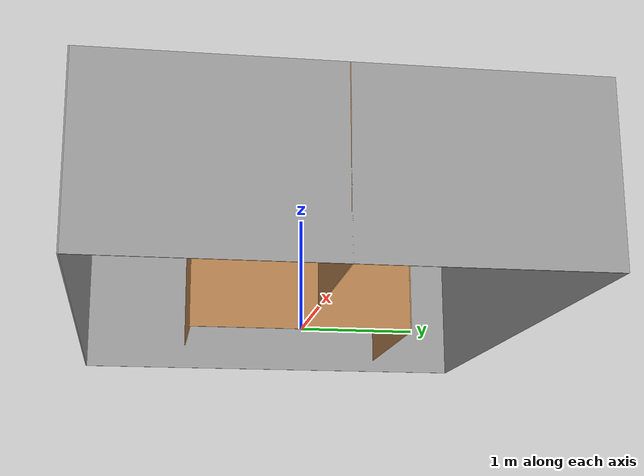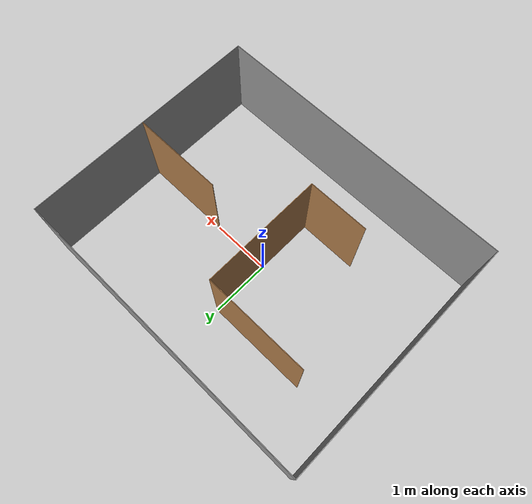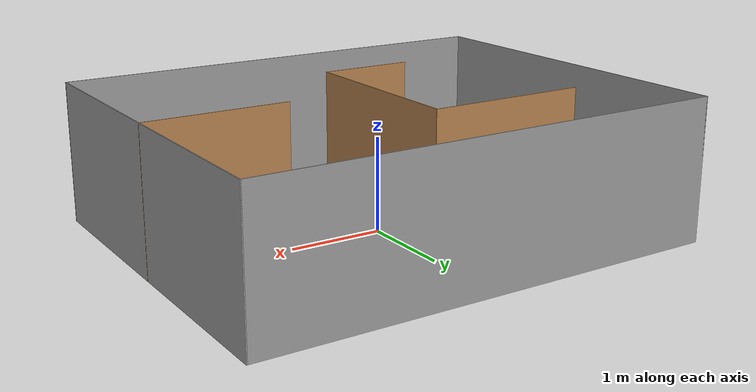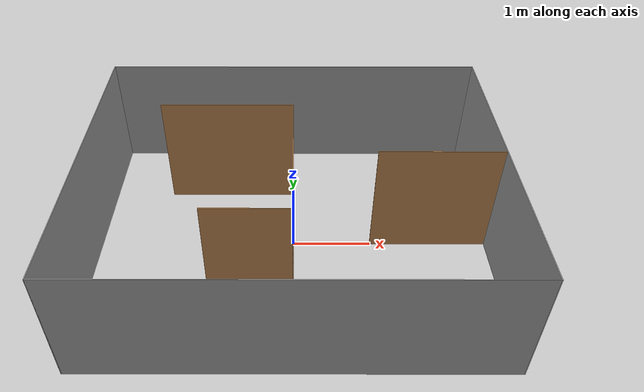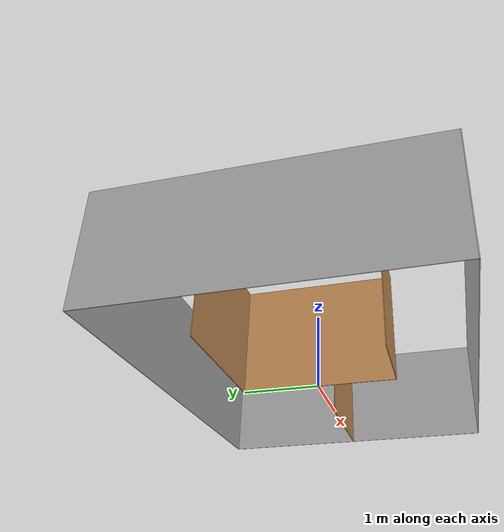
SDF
<?xml version='1.0'?>
<sdf version='1.7'>
  <model name='lab_aux'>
    <pose>0 0 0 0 -0 0</pose>
    <link name='Wall_11'>
      <collision name='Wall_11_Collision'>
        <geometry>
          <box>
            <size>4.01 0.01 1.5</size>
          </box>
        </geometry>
        <pose>0 0 0.75 0 -0 0</pose>
      </collision>
      <visual name='Wall_11_Visual'>
        <pose>0 0 0.75 0 -0 0</pose>
        <geometry>
          <box>
            <size>4.01 0.01 1.5</size>
          </box>
        </geometry>
        <material>
          <script>
            <uri>file://media/materials/scripts/gazebo.material</uri>
            <name>Gazebo/Grey</name>
          </script>
          <ambient>1 1 1 1</ambient>
        </material>
        <meta>
          <layer>0</layer>
        </meta>
      </visual>
      <pose>2.5 0 0 0 -0 -1.5708</pose>
    </link>
    <link name='Wall_13'>
      <collision name='Wall_13_Collision'>
        <geometry>
          <box>
            <size>2.01 0.01 1.5</size>
          </box>
        </geometry>
        <pose>0 0 0.75 0 -0 0</pose>
      </collision>
      <visual name='Wall_13_Visual'>
        <pose>0 0 0.75 0 -0 0</pose>
        <geometry>
          <box>
            <size>2.01 0.01 1.5</size>
          </box>
        </geometry>
        <material>
          <script>
            <uri>file://media/materials/scripts/gazebo.material</uri>
            <name>Gazebo/Wood</name>
          </script>
          <ambient>1 1 1 1</ambient>
        </material>
        <meta>
          <layer>0</layer>
        </meta>
      </visual>
      <pose>0 0 0 0 -0 1.5708</pose>
    </link>
    <link name='Wall_15'>
      <collision name='Wall_15_Collision'>
        <geometry>
          <box>
            <size>1.71082 0.01 1.5</size>
          </box>
        </geometry>
        <pose>0 0 0.75 0 -0 0</pose>
      </collision>
      <visual name='Wall_15_Visual'>
        <pose>0 0 0.75 0 -0 0</pose>
        <geometry>
          <box>
            <size>1.71082 0.01 1.5</size>
          </box>
        </geometry>
        <material>
          <script>
            <uri>file://media/materials/scripts/gazebo.material</uri>
            <name>Gazebo/Wood</name>
          </script>
          <ambient>1 1 1 1</ambient>
        </material>
        <meta>
          <layer>0</layer>
        </meta>
      </visual>
      <pose>-0.85 1.007 0 0 -0 0</pose>
    </link>
    <link name='Wall_17'>
      <collision name='Wall_17_Collision'>
        <geometry>
          <box>
            <size>1.51 0.01 1.5</size>
          </box>
        </geometry>
        <pose>0 0 0.75 0 -0 0</pose>
      </collision>
      <visual name='Wall_17_Visual'>
        <pose>0 0 0.75 0 -0 0</pose>
        <geometry>
          <box>
            <size>1.51 0.01 1.5</size>
          </box>
        </geometry>
        <material>
          <script>
            <uri>file://media/materials/scripts/gazebo.material</uri>
            <name>Gazebo/Wood</name>
          </script>
          <ambient>1 1 1 1</ambient>
        </material>
        <meta>
          <layer>0</layer>
        </meta>
      </visual>
      <pose>1.75 0 0 0 -0 0</pose>
    </link>
    <link name='Wall_19'>
      <collision name='Wall_19_Collision'>
        <geometry>
          <box>
            <size>1.01 0.01 1.5</size>
          </box>
        </geometry>
        <pose>0 0 0.75 0 -0 0</pose>
      </collision>
      <visual name='Wall_19_Visual'>
        <pose>0 0 0.75 0 -0 0</pose>
        <geometry>
          <box>
            <size>1.01 0.01 1.5</size>
          </box>
        </geometry>
        <material>
          <script>
            <uri>file://media/materials/scripts/gazebo.material</uri>
            <name>Gazebo/Wood</name>
          </script>
          <ambient>1 1 1 1</ambient>
        </material>
        <meta>
          <layer>0</layer>
        </meta>
      </visual>
      <pose>-0.5 -1 0 0 -0 0</pose>
    </link>
    <link name='Wall_5'>
      <collision name='Wall_5_Collision'>
        <geometry>
          <box>
            <size>4.01 0.01 1.5</size>
          </box>
        </geometry>
        <pose>0 0 0.75 0 -0 0</pose>
      </collision>
      <visual name='Wall_5_Visual'>
        <pose>0 0 0.75 0 -0 0</pose>
        <geometry>
          <box>
            <size>4.01 0.01 1.5</size>
          </box>
        </geometry>
        <material>
          <script>
            <uri>file://media/materials/scripts/gazebo.material</uri>
            <name>Gazebo/Grey</name>
          </script>
          <ambient>1 1 1 1</ambient>
        </material>
        <meta>
          <layer>0</layer>
        </meta>
      </visual>
      <pose>-2.5 0 0 0 -0 1.5708</pose>
    </link>
    <link name='Wall_7'>
      <collision name='Wall_7_Collision'>
        <geometry>
          <box>
            <size>5.01 0.01 1.5</size>
          </box>
        </geometry>
        <pose>0 0 0.75 0 -0 0</pose>
      </collision>
      <visual name='Wall_7_Visual'>
        <pose>0 0 0.75 0 -0 0</pose>
        <geometry>
          <box>
            <size>5.01 0.01 1.5</size>
          </box>
        </geometry>
        <material>
          <script>
            <uri>file://media/materials/scripts/gazebo.material</uri>
            <name>Gazebo/Grey</name>
          </script>
          <ambient>1 1 1 1</ambient>
        </material>
        <meta>
          <layer>0</layer>
        </meta>
      </visual>
      <pose>0 -2 0 0 -0 0</pose>
    </link>
    <link name='Wall_9'>
      <collision name='Wall_9_Collision'>
        <geometry>
          <box>
            <size>5.01 0.01 1.5</size>
          </box>
        </geometry>
        <pose>0 0 0.75 0 -0 0</pose>
      </collision>
      <visual name='Wall_9_Visual'>
        <pose>0 0 0.75 0 -0 0</pose>
        <geometry>
          <box>
            <size>5.01 0.01 1.5</size>
          </box>
        </geometry>
        <material>
          <script>
            <uri>file://media/materials/scripts/gazebo.material</uri>
            <name>Gazebo/Grey</name>
          </script>
          <ambient>1 1 1 1</ambient>
        </material>
        <meta>
          <layer>0</layer>
        </meta>
      </visual>
      <pose>0 2 0 0 -0 0</pose>
    </link>
    <static>1</static>
  </model>
</sdf>
